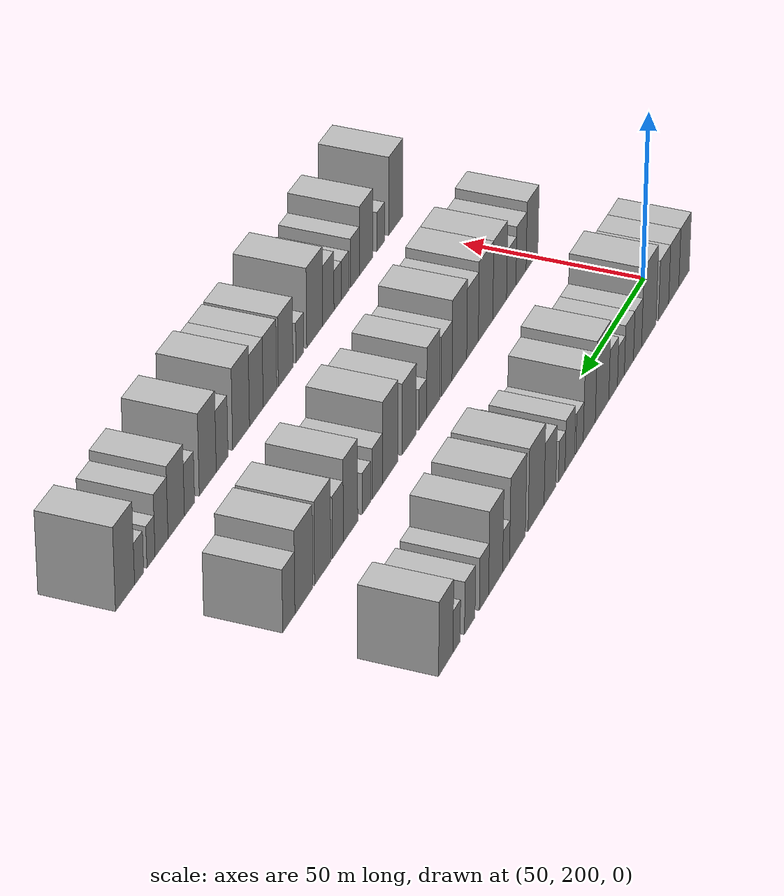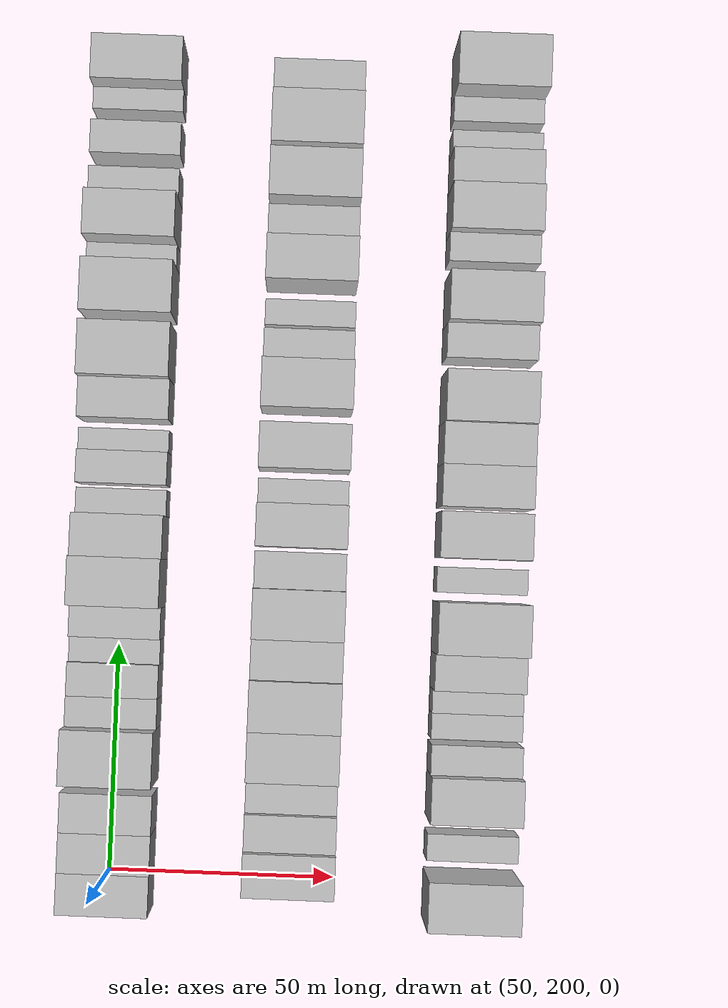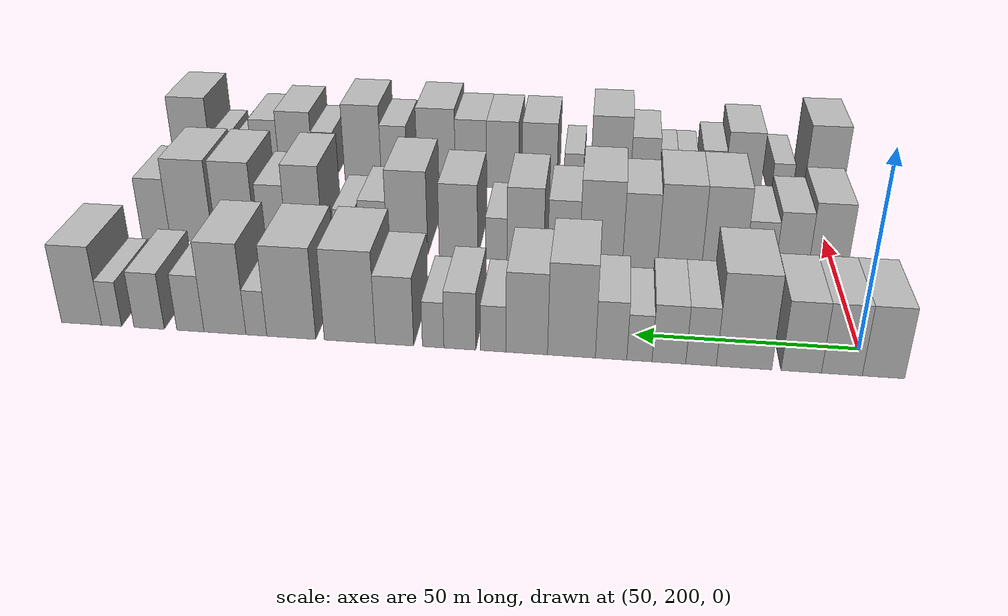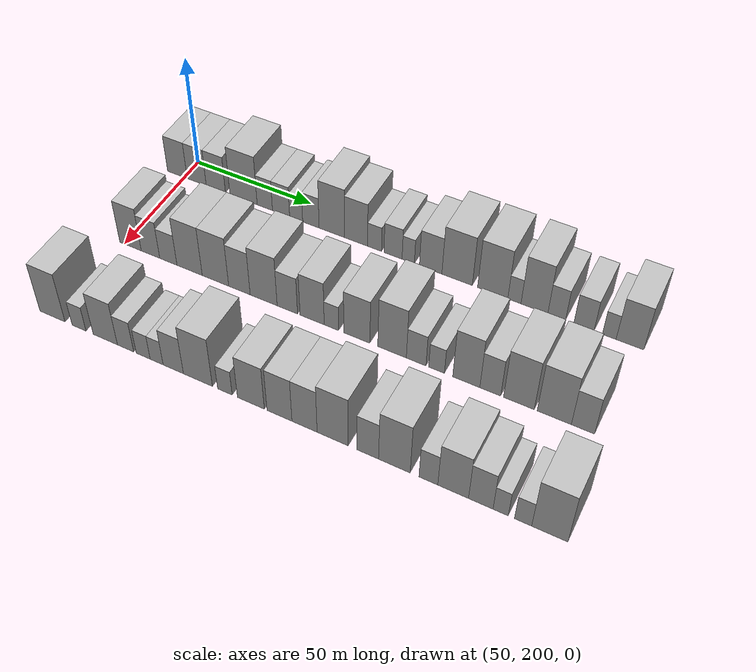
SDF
<sdf version="1.6">
 <world name="default">
  <model name="building_62">
   <static>1</static>
   <pose>50.0000 196.6651 0 0.000000 0.000000 0.000000</pose>
   <link name="link">
    <pose>0 0 9.00 0 0 0</pose>
    <collision name="collision"><geometry><box><size>20.0000 8.9473 18.0000</size></box></geometry></collision>
    <visual name="visual">
     <cast_shadows>0</cast_shadows>
     <geometry><box><size>20.0000 8.9473 18.0000</size></box></geometry>
     <material>
      <script>
       <uri>model://HANNAS_wall/materials/scripts</uri>
       <uri>model://HANNAS_wall/materials/textures</uri>
       <name>vrc/HANNAS_wall</name>
      </script>
     </material>
    </visual>
   </link>
  </model>
  <model name="building_63">
   <static>1</static>
   <pose>50.0000 205.4708 0 0.000000 0.000000 0.000000</pose>
   <link name="link">
    <pose>0 0 9.00 0 0 0</pose>
    <collision name="collision"><geometry><box><size>20.0000 8.6641 18.0000</size></box></geometry></collision>
    <visual name="visual">
     <cast_shadows>0</cast_shadows>
     <geometry><box><size>20.0000 8.6641 18.0000</size></box></geometry>
     <material>
      <script>
       <uri>model://HANNAS_wall/materials/scripts</uri>
       <uri>model://HANNAS_wall/materials/textures</uri>
       <name>vrc/HANNAS_wall</name>
      </script>
     </material>
    </visual>
   </link>
  </model>
  <model name="building_64">
   <static>1</static>
   <pose>50.0000 214.1086 0 0.000000 0.000000 0.000000</pose>
   <link name="link">
    <pose>0 0 9.00 0 0 0</pose>
    <collision name="collision"><geometry><box><size>20.0000 8.6115 18.0000</size></box></geometry></collision>
    <visual name="visual">
     <cast_shadows>0</cast_shadows>
     <geometry><box><size>20.0000 8.6115 18.0000</size></box></geometry>
     <material>
      <script>
       <uri>model://HANNAS_wall/materials/scripts</uri>
       <uri>model://HANNAS_wall/materials/textures</uri>
       <name>vrc/HANNAS_wall</name>
      </script>
     </material>
    </visual>
   </link>
  </model>
  <model name="building_65">
   <static>1</static>
   <pose>50.0000 226.4119 0 0.000000 0.000000 0.000000</pose>
   <link name="link">
    <pose>0 0 12.00 0 0 0</pose>
    <collision name="collision"><geometry><box><size>20.0000 11.9950 24.0000</size></box></geometry></collision>
    <visual name="visual">
     <cast_shadows>0</cast_shadows>
     <geometry><box><size>20.0000 11.9950 24.0000</size></box></geometry>
     <material>
      <script>
       <uri>model://HANNAS_wall/materials/scripts</uri>
       <uri>model://HANNAS_wall/materials/textures</uri>
       <name>vrc/HANNAS_wall</name>
      </script>
     </material>
    </visual>
   </link>
  </model>
  <model name="building_66">
   <static>1</static>
   <pose>50.0000 235.7333 0 0.000000 0.000000 0.000000</pose>
   <link name="link">
    <pose>0 0 7.50 0 0 0</pose>
    <collision name="collision"><geometry><box><size>20.0000 6.6477 15.0000</size></box></geometry></collision>
    <visual name="visual">
     <cast_shadows>0</cast_shadows>
     <geometry><box><size>20.0000 6.6477 15.0000</size></box></geometry>
     <material>
      <script>
       <uri>model://HANNAS_wall/materials/scripts</uri>
       <uri>model://HANNAS_wall/materials/textures</uri>
       <name>vrc/HANNAS_wall</name>
      </script>
     </material>
    </visual>
   </link>
  </model>
  <model name="building_67">
   <static>1</static>
   <pose>50.0000 242.7512 0 0.000000 0.000000 0.000000</pose>
   <link name="link">
    <pose>0 0 7.50 0 0 0</pose>
    <collision name="collision"><geometry><box><size>20.0000 7.3881 15.0000</size></box></geometry></collision>
    <visual name="visual">
     <cast_shadows>0</cast_shadows>
     <geometry><box><size>20.0000 7.3881 15.0000</size></box></geometry>
     <material>
      <script>
       <uri>model://HANNAS_wall/materials/scripts</uri>
       <uri>model://HANNAS_wall/materials/textures</uri>
       <name>vrc/HANNAS_wall</name>
      </script>
     </material>
    </visual>
   </link>
  </model>
  <model name="building_68">
   <static>1</static>
   <pose>50.0000 249.2153 0 0.000000 0.000000 0.000000</pose>
   <link name="link">
    <pose>0 0 6.00 0 0 0</pose>
    <collision name="collision"><geometry><box><size>20.0000 5.5402 12.0000</size></box></geometry></collision>
    <visual name="visual">
     <cast_shadows>0</cast_shadows>
     <geometry><box><size>20.0000 5.5402 12.0000</size></box></geometry>
     <material>
      <script>
       <uri>model://HANNAS_wall/materials/scripts</uri>
       <uri>model://HANNAS_wall/materials/textures</uri>
       <name>vrc/HANNAS_wall</name>
      </script>
     </material>
    </visual>
   </link>
  </model>
  <model name="building_69">
   <static>1</static>
   <pose>50.0000 255.4586 0 0.000000 0.000000 0.000000</pose>
   <link name="link">
    <pose>0 0 7.50 0 0 0</pose>
    <collision name="collision"><geometry><box><size>20.0000 6.9463 15.0000</size></box></geometry></collision>
    <visual name="visual">
     <cast_shadows>0</cast_shadows>
     <geometry><box><size>20.0000 6.9463 15.0000</size></box></geometry>
     <material>
      <script>
       <uri>model://HANNAS_wall/materials/scripts</uri>
       <uri>model://HANNAS_wall/materials/textures</uri>
       <name>vrc/HANNAS_wall</name>
      </script>
     </material>
    </visual>
   </link>
  </model>
  <model name="building_70">
   <static>1</static>
   <pose>50.0000 264.2578 0 0.000000 0.000000 0.000000</pose>
   <link name="link">
    <pose>0 0 12.00 0 0 0</pose>
    <collision name="collision"><geometry><box><size>20.0000 10.6522 24.0000</size></box></geometry></collision>
    <visual name="visual">
     <cast_shadows>0</cast_shadows>
     <geometry><box><size>20.0000 10.6522 24.0000</size></box></geometry>
     <material>
      <script>
       <uri>model://HANNAS_wall/materials/scripts</uri>
       <uri>model://HANNAS_wall/materials/textures</uri>
       <name>vrc/HANNAS_wall</name>
      </script>
     </material>
    </visual>
   </link>
  </model>
  <model name="building_71">
   <static>1</static>
   <pose>50.0000 274.2745 0 0.000000 0.000000 0.000000</pose>
   <link name="link">
    <pose>0 0 10.50 0 0 0</pose>
    <collision name="collision"><geometry><box><size>20.0000 9.3812 21.0000</size></box></geometry></collision>
    <visual name="visual">
     <cast_shadows>0</cast_shadows>
     <geometry><box><size>20.0000 9.3812 21.0000</size></box></geometry>
     <material>
      <script>
       <uri>model://HANNAS_wall/materials/scripts</uri>
       <uri>model://HANNAS_wall/materials/textures</uri>
       <name>vrc/HANNAS_wall</name>
      </script>
     </material>
    </visual>
   </link>
  </model>
  <model name="building_72">
   <static>1</static>
   <pose>50.0000 281.8355 0 0.000000 0.000000 0.000000</pose>
   <link name="link">
    <pose>0 0 6.00 0 0 0</pose>
    <collision name="collision"><geometry><box><size>20.0000 5.7407 12.0000</size></box></geometry></collision>
    <visual name="visual">
     <cast_shadows>0</cast_shadows>
     <geometry><box><size>20.0000 5.7407 12.0000</size></box></geometry>
     <material>
      <script>
       <uri>model://HANNAS_wall/materials/scripts</uri>
       <uri>model://HANNAS_wall/materials/textures</uri>
       <name>vrc/HANNAS_wall</name>
      </script>
     </material>
    </visual>
   </link>
  </model>
  <model name="building_73">
   <static>1</static>
   <pose>50.0000 289.3360 0 0.000000 0.000000 0.000000</pose>
   <link name="link">
    <pose>0 0 7.50 0 0 0</pose>
    <collision name="collision"><geometry><box><size>20.0000 7.2604 15.0000</size></box></geometry></collision>
    <visual name="visual">
     <cast_shadows>0</cast_shadows>
     <geometry><box><size>20.0000 7.2604 15.0000</size></box></geometry>
     <material>
      <script>
       <uri>model://HANNAS_wall/materials/scripts</uri>
       <uri>model://HANNAS_wall/materials/textures</uri>
       <name>vrc/HANNAS_wall</name>
      </script>
     </material>
    </visual>
   </link>
  </model>
  <model name="building_74">
   <static>1</static>
   <pose>50.0000 295.4205 0 0.000000 0.000000 0.000000</pose>
   <link name="link">
    <pose>0 0 6.00 0 0 0</pose>
    <collision name="collision"><geometry><box><size>20.0000 4.9085 12.0000</size></box></geometry></collision>
    <visual name="visual">
     <cast_shadows>0</cast_shadows>
     <geometry><box><size>20.0000 4.9085 12.0000</size></box></geometry>
     <material>
      <script>
       <uri>model://HANNAS_wall/materials/scripts</uri>
       <uri>model://HANNAS_wall/materials/textures</uri>
       <name>vrc/HANNAS_wall</name>
      </script>
     </material>
    </visual>
   </link>
  </model>
  <model name="building_75">
   <static>1</static>
   <pose>50.0000 304.2933 0 0.000000 0.000000 0.000000</pose>
   <link name="link">
    <pose>0 0 9.00 0 0 0</pose>
    <collision name="collision"><geometry><box><size>20.0000 8.8372 18.0000</size></box></geometry></collision>
    <visual name="visual">
     <cast_shadows>0</cast_shadows>
     <geometry><box><size>20.0000 8.8372 18.0000</size></box></geometry>
     <material>
      <script>
       <uri>model://HANNAS_wall/materials/scripts</uri>
       <uri>model://HANNAS_wall/materials/textures</uri>
       <name>vrc/HANNAS_wall</name>
      </script>
     </material>
    </visual>
   </link>
  </model>
  <model name="building_76">
   <static>1</static>
   <pose>50.0000 314.6192 0 0.000000 0.000000 0.000000</pose>
   <link name="link">
    <pose>0 0 12.00 0 0 0</pose>
    <collision name="collision"><geometry><box><size>20.0000 11.8146 24.0000</size></box></geometry></collision>
    <visual name="visual">
     <cast_shadows>0</cast_shadows>
     <geometry><box><size>20.0000 11.8146 24.0000</size></box></geometry>
     <material>
      <script>
       <uri>model://HANNAS_wall/materials/scripts</uri>
       <uri>model://HANNAS_wall/materials/textures</uri>
       <name>vrc/HANNAS_wall</name>
      </script>
     </material>
    </visual>
   </link>
  </model>
  <model name="building_77">
   <static>1</static>
   <pose>50.0000 328.2675 0 0.000000 0.000000 0.000000</pose>
   <link name="link">
    <pose>0 0 12.00 0 0 0</pose>
    <collision name="collision"><geometry><box><size>20.0000 11.4820 24.0000</size></box></geometry></collision>
    <visual name="visual">
     <cast_shadows>0</cast_shadows>
     <geometry><box><size>20.0000 11.4820 24.0000</size></box></geometry>
     <material>
      <script>
       <uri>model://HANNAS_wall/materials/scripts</uri>
       <uri>model://HANNAS_wall/materials/textures</uri>
       <name>vrc/HANNAS_wall</name>
      </script>
     </material>
    </visual>
   </link>
  </model>
  <model name="building_78">
   <static>1</static>
   <pose>50.0000 336.4763 0 0.000000 0.000000 0.000000</pose>
   <link name="link">
    <pose>0 0 6.00 0 0 0</pose>
    <collision name="collision"><geometry><box><size>20.0000 4.9357 12.0000</size></box></geometry></collision>
    <visual name="visual">
     <cast_shadows>0</cast_shadows>
     <geometry><box><size>20.0000 4.9357 12.0000</size></box></geometry>
     <material>
      <script>
       <uri>model://HANNAS_wall/materials/scripts</uri>
       <uri>model://HANNAS_wall/materials/textures</uri>
       <name>vrc/HANNAS_wall</name>
      </script>
     </material>
    </visual>
   </link>
  </model>
  <model name="building_79">
   <static>1</static>
   <pose>50.0000 343.9166 0 0.000000 0.000000 0.000000</pose>
   <link name="link">
    <pose>0 0 12.00 0 0 0</pose>
    <collision name="collision"><geometry><box><size>20.0000 9.9449 24.0000</size></box></geometry></collision>
    <visual name="visual">
     <cast_shadows>0</cast_shadows>
     <geometry><box><size>20.0000 9.9449 24.0000</size></box></geometry>
     <material>
      <script>
       <uri>model://HANNAS_wall/materials/scripts</uri>
       <uri>model://HANNAS_wall/materials/textures</uri>
       <name>vrc/HANNAS_wall</name>
      </script>
     </material>
    </visual>
   </link>
  </model>
  <model name="building_80">
   <static>1</static>
   <pose>50.0000 352.1392 0 0.000000 0.000000 0.000000</pose>
   <link name="link">
    <pose>0 0 7.50 0 0 0</pose>
    <collision name="collision"><geometry><box><size>20.0000 6.5004 15.0000</size></box></geometry></collision>
    <visual name="visual">
     <cast_shadows>0</cast_shadows>
     <geometry><box><size>20.0000 6.5004 15.0000</size></box></geometry>
     <material>
      <script>
       <uri>model://HANNAS_wall/materials/scripts</uri>
       <uri>model://HANNAS_wall/materials/textures</uri>
       <name>vrc/HANNAS_wall</name>
      </script>
     </material>
    </visual>
   </link>
  </model>
  <model name="building_81">
   <static>1</static>
   <pose>50.0000 362.0361 0 0.000000 0.000000 0.000000</pose>
   <link name="link">
    <pose>0 0 7.50 0 0 0</pose>
    <collision name="collision"><geometry><box><size>20.0000 7.2933 15.0000</size></box></geometry></collision>
    <visual name="visual">
     <cast_shadows>0</cast_shadows>
     <geometry><box><size>20.0000 7.2933 15.0000</size></box></geometry>
     <material>
      <script>
       <uri>model://HANNAS_wall/materials/scripts</uri>
       <uri>model://HANNAS_wall/materials/textures</uri>
       <name>vrc/HANNAS_wall</name>
      </script>
     </material>
    </visual>
   </link>
  </model>
  <model name="building_82">
   <static>1</static>
   <pose>50.0000 371.1086 0 0.000000 0.000000 0.000000</pose>
   <link name="link">
    <pose>0 0 6.00 0 0 0</pose>
    <collision name="collision"><geometry><box><size>20.0000 4.8518 12.0000</size></box></geometry></collision>
    <visual name="visual">
     <cast_shadows>0</cast_shadows>
     <geometry><box><size>20.0000 4.8518 12.0000</size></box></geometry>
     <material>
      <script>
       <uri>model://HANNAS_wall/materials/scripts</uri>
       <uri>model://HANNAS_wall/materials/textures</uri>
       <name>vrc/HANNAS_wall</name>
      </script>
     </material>
    </visual>
   </link>
  </model>
  <model name="building_83">
   <static>1</static>
   <pose>50.0000 378.4152 0 0.000000 0.000000 0.000000</pose>
   <link name="link">
    <pose>0 0 10.50 0 0 0</pose>
    <collision name="collision"><geometry><box><size>20.0000 9.7613 21.0000</size></box></geometry></collision>
    <visual name="visual">
     <cast_shadows>0</cast_shadows>
     <geometry><box><size>20.0000 9.7613 21.0000</size></box></geometry>
     <material>
      <script>
       <uri>model://HANNAS_wall/materials/scripts</uri>
       <uri>model://HANNAS_wall/materials/textures</uri>
       <name>vrc/HANNAS_wall</name>
      </script>
     </material>
    </visual>
   </link>
  </model>
  <model name="building_145">
   <static>1</static>
   <pose>90.0000 202.6018 0 0.000000 0.000000 0.000000</pose>
   <link name="link">
    <pose>0 0 10.50 0 0 0</pose>
    <collision name="collision"><geometry><box><size>20.0000 9.4312 21.0000</size></box></geometry></collision>
    <visual name="visual">
     <cast_shadows>0</cast_shadows>
     <geometry><box><size>20.0000 9.4312 21.0000</size></box></geometry>
     <material>
      <script>
       <uri>model://HANNAS_wall/materials/scripts</uri>
       <uri>model://HANNAS_wall/materials/textures</uri>
       <name>vrc/HANNAS_wall</name>
      </script>
     </material>
    </visual>
   </link>
  </model>
  <model name="building_146">
   <static>1</static>
   <pose>90.0000 211.3179 0 0.000000 0.000000 0.000000</pose>
   <link name="link">
    <pose>0 0 9.00 0 0 0</pose>
    <collision name="collision"><geometry><box><size>20.0000 8.0010 18.0000</size></box></geometry></collision>
    <visual name="visual">
     <cast_shadows>0</cast_shadows>
     <geometry><box><size>20.0000 8.0010 18.0000</size></box></geometry>
     <material>
      <script>
       <uri>model://HANNAS_wall/materials/scripts</uri>
       <uri>model://HANNAS_wall/materials/textures</uri>
       <name>vrc/HANNAS_wall</name>
      </script>
     </material>
    </visual>
   </link>
  </model>
  <model name="building_147">
   <static>1</static>
   <pose>90.0000 219.0181 0 0.000000 0.000000 0.000000</pose>
   <link name="link">
    <pose>0 0 7.50 0 0 0</pose>
    <collision name="collision"><geometry><box><size>20.0000 7.3994 15.0000</size></box></geometry></collision>
    <visual name="visual">
     <cast_shadows>0</cast_shadows>
     <geometry><box><size>20.0000 7.3994 15.0000</size></box></geometry>
     <material>
      <script>
       <uri>model://HANNAS_wall/materials/scripts</uri>
       <uri>model://HANNAS_wall/materials/textures</uri>
       <name>vrc/HANNAS_wall</name>
      </script>
     </material>
    </visual>
   </link>
  </model>
  <model name="building_148">
   <static>1</static>
   <pose>90.0000 228.0673 0 0.000000 0.000000 0.000000</pose>
   <link name="link">
    <pose>0 0 12.00 0 0 0</pose>
    <collision name="collision"><geometry><box><size>20.0000 10.6990 24.0000</size></box></geometry></collision>
    <visual name="visual">
     <cast_shadows>0</cast_shadows>
     <geometry><box><size>20.0000 10.6990 24.0000</size></box></geometry>
     <material>
      <script>
       <uri>model://HANNAS_wall/materials/scripts</uri>
       <uri>model://HANNAS_wall/materials/textures</uri>
       <name>vrc/HANNAS_wall</name>
      </script>
     </material>
    </visual>
   </link>
  </model>
  <model name="building_149">
   <static>1</static>
   <pose>90.0000 238.9220 0 0.000000 0.000000 0.000000</pose>
   <link name="link">
    <pose>0 0 12.00 0 0 0</pose>
    <collision name="collision"><geometry><box><size>20.0000 11.0103 24.0000</size></box></geometry></collision>
    <visual name="visual">
     <cast_shadows>0</cast_shadows>
     <geometry><box><size>20.0000 11.0103 24.0000</size></box></geometry>
     <material>
      <script>
       <uri>model://HANNAS_wall/materials/scripts</uri>
       <uri>model://HANNAS_wall/materials/textures</uri>
       <name>vrc/HANNAS_wall</name>
      </script>
     </material>
    </visual>
   </link>
  </model>
  <model name="building_150">
   <static>1</static>
   <pose>90.0000 248.8264 0 0.000000 0.000000 0.000000</pose>
   <link name="link">
    <pose>0 0 10.50 0 0 0</pose>
    <collision name="collision"><geometry><box><size>20.0000 8.7985 21.0000</size></box></geometry></collision>
    <visual name="visual">
     <cast_shadows>0</cast_shadows>
     <geometry><box><size>20.0000 8.7985 21.0000</size></box></geometry>
     <material>
      <script>
       <uri>model://HANNAS_wall/materials/scripts</uri>
       <uri>model://HANNAS_wall/materials/textures</uri>
       <name>vrc/HANNAS_wall</name>
      </script>
     </material>
    </visual>
   </link>
  </model>
  <model name="building_151">
   <static>1</static>
   <pose>90.0000 258.6793 0 0.000000 0.000000 0.000000</pose>
   <link name="link">
    <pose>0 0 12.00 0 0 0</pose>
    <collision name="collision"><geometry><box><size>20.0000 10.9075 24.0000</size></box></geometry></collision>
    <visual name="visual">
     <cast_shadows>0</cast_shadows>
     <geometry><box><size>20.0000 10.9075 24.0000</size></box></geometry>
     <material>
      <script>
       <uri>model://HANNAS_wall/materials/scripts</uri>
       <uri>model://HANNAS_wall/materials/textures</uri>
       <name>vrc/HANNAS_wall</name>
      </script>
     </material>
    </visual>
   </link>
  </model>
  <model name="building_152">
   <static>1</static>
   <pose>90.0000 268.1873 0 0.000000 0.000000 0.000000</pose>
   <link name="link">
    <pose>0 0 9.00 0 0 0</pose>
    <collision name="collision"><geometry><box><size>20.0000 8.1083 18.0000</size></box></geometry></collision>
    <visual name="visual">
     <cast_shadows>0</cast_shadows>
     <geometry><box><size>20.0000 8.1083 18.0000</size></box></geometry>
     <material>
      <script>
       <uri>model://HANNAS_wall/materials/scripts</uri>
       <uri>model://HANNAS_wall/materials/textures</uri>
       <name>vrc/HANNAS_wall</name>
      </script>
     </material>
    </visual>
   </link>
  </model>
  <model name="building_153">
   <static>1</static>
   <pose>90.0000 277.9741 0 0.000000 0.000000 0.000000</pose>
   <link name="link">
    <pose>0 0 10.50 0 0 0</pose>
    <collision name="collision"><geometry><box><size>20.0000 9.4654 21.0000</size></box></geometry></collision>
    <visual name="visual">
     <cast_shadows>0</cast_shadows>
     <geometry><box><size>20.0000 9.4654 21.0000</size></box></geometry>
     <material>
      <script>
       <uri>model://HANNAS_wall/materials/scripts</uri>
       <uri>model://HANNAS_wall/materials/textures</uri>
       <name>vrc/HANNAS_wall</name>
      </script>
     </material>
    </visual>
   </link>
  </model>
  <model name="building_154">
   <static>1</static>
   <pose>90.0000 285.4874 0 0.000000 0.000000 0.000000</pose>
   <link name="link">
    <pose>0 0 6.00 0 0 0</pose>
    <collision name="collision"><geometry><box><size>20.0000 5.5613 12.0000</size></box></geometry></collision>
    <visual name="visual">
     <cast_shadows>0</cast_shadows>
     <geometry><box><size>20.0000 5.5613 12.0000</size></box></geometry>
     <material>
      <script>
       <uri>model://HANNAS_wall/materials/scripts</uri>
       <uri>model://HANNAS_wall/materials/textures</uri>
       <name>vrc/HANNAS_wall</name>
      </script>
     </material>
    </visual>
   </link>
  </model>
  <model name="building_155">
   <static>1</static>
   <pose>90.0000 295.2616 0 0.000000 0.000000 0.000000</pose>
   <link name="link">
    <pose>0 0 10.50 0 0 0</pose>
    <collision name="collision"><geometry><box><size>20.0000 9.9870 21.0000</size></box></geometry></collision>
    <visual name="visual">
     <cast_shadows>0</cast_shadows>
     <geometry><box><size>20.0000 9.9870 21.0000</size></box></geometry>
     <material>
      <script>
       <uri>model://HANNAS_wall/materials/scripts</uri>
       <uri>model://HANNAS_wall/materials/textures</uri>
       <name>vrc/HANNAS_wall</name>
      </script>
     </material>
    </visual>
   </link>
  </model>
  <model name="building_156">
   <static>1</static>
   <pose>90.0000 308.5916 0 0.000000 0.000000 0.000000</pose>
   <link name="link">
    <pose>0 0 12.00 0 0 0</pose>
    <collision name="collision"><geometry><box><size>20.0000 10.6731 24.0000</size></box></geometry></collision>
    <visual name="visual">
     <cast_shadows>0</cast_shadows>
     <geometry><box><size>20.0000 10.6731 24.0000</size></box></geometry>
     <material>
      <script>
       <uri>model://HANNAS_wall/materials/scripts</uri>
       <uri>model://HANNAS_wall/materials/textures</uri>
       <name>vrc/HANNAS_wall</name>
      </script>
     </material>
    </visual>
   </link>
  </model>
  <model name="building_157">
   <static>1</static>
   <pose>90.0000 317.5486 0 0.000000 0.000000 0.000000</pose>
   <link name="link">
    <pose>0 0 7.50 0 0 0</pose>
    <collision name="collision"><geometry><box><size>20.0000 7.2409 15.0000</size></box></geometry></collision>
    <visual name="visual">
     <cast_shadows>0</cast_shadows>
     <geometry><box><size>20.0000 7.2409 15.0000</size></box></geometry>
     <material>
      <script>
       <uri>model://HANNAS_wall/materials/scripts</uri>
       <uri>model://HANNAS_wall/materials/textures</uri>
       <name>vrc/HANNAS_wall</name>
      </script>
     </material>
    </visual>
   </link>
  </model>
  <model name="building_158">
   <static>1</static>
   <pose>90.0000 325.0312 0 0.000000 0.000000 0.000000</pose>
   <link name="link">
    <pose>0 0 6.00 0 0 0</pose>
    <collision name="collision"><geometry><box><size>20.0000 5.7243 12.0000</size></box></geometry></collision>
    <visual name="visual">
     <cast_shadows>0</cast_shadows>
     <geometry><box><size>20.0000 5.7243 12.0000</size></box></geometry>
     <material>
      <script>
       <uri>model://HANNAS_wall/materials/scripts</uri>
       <uri>model://HANNAS_wall/materials/textures</uri>
       <name>vrc/HANNAS_wall</name>
      </script>
     </material>
    </visual>
   </link>
  </model>
  <model name="building_159">
   <static>1</static>
   <pose>90.0000 335.7489 0 0.000000 0.000000 0.000000</pose>
   <link name="link">
    <pose>0 0 12.00 0 0 0</pose>
    <collision name="collision"><geometry><box><size>20.0000 9.7111 24.0000</size></box></geometry></collision>
    <visual name="visual">
     <cast_shadows>0</cast_shadows>
     <geometry><box><size>20.0000 9.7111 24.0000</size></box></geometry>
     <material>
      <script>
       <uri>model://HANNAS_wall/materials/scripts</uri>
       <uri>model://HANNAS_wall/materials/textures</uri>
       <name>vrc/HANNAS_wall</name>
      </script>
     </material>
    </visual>
   </link>
  </model>
  <model name="building_160">
   <static>1</static>
   <pose>90.0000 344.2893 0 0.000000 0.000000 0.000000</pose>
   <link name="link">
    <pose>0 0 9.00 0 0 0</pose>
    <collision name="collision"><geometry><box><size>20.0000 7.3697 18.0000</size></box></geometry></collision>
    <visual name="visual">
     <cast_shadows>0</cast_shadows>
     <geometry><box><size>20.0000 7.3697 18.0000</size></box></geometry>
     <material>
      <script>
       <uri>model://HANNAS_wall/materials/scripts</uri>
       <uri>model://HANNAS_wall/materials/textures</uri>
       <name>vrc/HANNAS_wall</name>
      </script>
     </material>
    </visual>
   </link>
  </model>
  <model name="building_161">
   <static>1</static>
   <pose>90.0000 354.3084 0 0.000000 0.000000 0.000000</pose>
   <link name="link">
    <pose>0 0 12.00 0 0 0</pose>
    <collision name="collision"><geometry><box><size>20.0000 10.6686 24.0000</size></box></geometry></collision>
    <visual name="visual">
     <cast_shadows>0</cast_shadows>
     <geometry><box><size>20.0000 10.6686 24.0000</size></box></geometry>
     <material>
      <script>
       <uri>model://HANNAS_wall/materials/scripts</uri>
       <uri>model://HANNAS_wall/materials/textures</uri>
       <name>vrc/HANNAS_wall</name>
      </script>
     </material>
    </visual>
   </link>
  </model>
  <model name="building_162">
   <static>1</static>
   <pose>90.0000 366.4593 0 0.000000 0.000000 0.000000</pose>
   <link name="link">
    <pose>0 0 12.00 0 0 0</pose>
    <collision name="collision"><geometry><box><size>20.0000 11.6332 24.0000</size></box></geometry></collision>
    <visual name="visual">
     <cast_shadows>0</cast_shadows>
     <geometry><box><size>20.0000 11.6332 24.0000</size></box></geometry>
     <material>
      <script>
       <uri>model://HANNAS_wall/materials/scripts</uri>
       <uri>model://HANNAS_wall/materials/textures</uri>
       <name>vrc/HANNAS_wall</name>
      </script>
     </material>
    </visual>
   </link>
  </model>
  <model name="building_163">
   <static>1</static>
   <pose>90.0000 376.1790 0 0.000000 0.000000 0.000000</pose>
   <link name="link">
    <pose>0 0 9.00 0 0 0</pose>
    <collision name="collision"><geometry><box><size>20.0000 7.8061 18.0000</size></box></geometry></collision>
    <visual name="visual">
     <cast_shadows>0</cast_shadows>
     <geometry><box><size>20.0000 7.8061 18.0000</size></box></geometry>
     <material>
      <script>
       <uri>model://HANNAS_wall/materials/scripts</uri>
       <uri>model://HANNAS_wall/materials/textures</uri>
       <name>vrc/HANNAS_wall</name>
      </script>
     </material>
    </visual>
   </link>
  </model>
  <model name="building_228">
   <static>1</static>
   <pose>130.0000 197.8472 0 0.000000 0.000000 0.000000</pose>
   <link name="link">
    <pose>0 0 12.00 0 0 0</pose>
    <collision name="collision"><geometry><box><size>20.0000 10.7073 24.0000</size></box></geometry></collision>
    <visual name="visual">
     <cast_shadows>0</cast_shadows>
     <geometry><box><size>20.0000 10.7073 24.0000</size></box></geometry>
     <material>
      <script>
       <uri>model://HANNAS_wall/materials/scripts</uri>
       <uri>model://HANNAS_wall/materials/textures</uri>
       <name>vrc/HANNAS_wall</name>
      </script>
     </material>
    </visual>
   </link>
  </model>
  <model name="building_229">
   <static>1</static>
   <pose>130.0000 209.1103 0 0.000000 0.000000 0.000000</pose>
   <link name="link">
    <pose>0 0 6.00 0 0 0</pose>
    <collision name="collision"><geometry><box><size>20.0000 5.8190 12.0000</size></box></geometry></collision>
    <visual name="visual">
     <cast_shadows>0</cast_shadows>
     <geometry><box><size>20.0000 5.8190 12.0000</size></box></geometry>
     <material>
      <script>
       <uri>model://HANNAS_wall/materials/scripts</uri>
       <uri>model://HANNAS_wall/materials/textures</uri>
       <name>vrc/HANNAS_wall</name>
      </script>
     </material>
    </visual>
   </link>
  </model>
  <model name="building_230">
   <static>1</static>
   <pose>130.0000 220.0280 0 0.000000 0.000000 0.000000</pose>
   <link name="link">
    <pose>0 0 10.50 0 0 0</pose>
    <collision name="collision"><geometry><box><size>20.0000 10.0163 21.0000</size></box></geometry></collision>
    <visual name="visual">
     <cast_shadows>0</cast_shadows>
     <geometry><box><size>20.0000 10.0163 21.0000</size></box></geometry>
     <material>
      <script>
       <uri>model://HANNAS_wall/materials/scripts</uri>
       <uri>model://HANNAS_wall/materials/textures</uri>
       <name>vrc/HANNAS_wall</name>
      </script>
     </material>
    </visual>
   </link>
  </model>
  <model name="building_231">
   <static>1</static>
   <pose>130.0000 228.3581 0 0.000000 0.000000 0.000000</pose>
   <link name="link">
    <pose>0 0 7.50 0 0 0</pose>
    <collision name="collision"><geometry><box><size>20.0000 6.6440 15.0000</size></box></geometry></collision>
    <visual name="visual">
     <cast_shadows>0</cast_shadows>
     <geometry><box><size>20.0000 6.6440 15.0000</size></box></geometry>
     <material>
      <script>
       <uri>model://HANNAS_wall/materials/scripts</uri>
       <uri>model://HANNAS_wall/materials/textures</uri>
       <name>vrc/HANNAS_wall</name>
      </script>
     </material>
    </visual>
   </link>
  </model>
  <model name="building_232">
   <static>1</static>
   <pose>130.0000 235.4862 0 0.000000 0.000000 0.000000</pose>
   <link name="link">
    <pose>0 0 6.00 0 0 0</pose>
    <collision name="collision"><geometry><box><size>20.0000 5.6122 12.0000</size></box></geometry></collision>
    <visual name="visual">
     <cast_shadows>0</cast_shadows>
     <geometry><box><size>20.0000 5.6122 12.0000</size></box></geometry>
     <material>
      <script>
       <uri>model://HANNAS_wall/materials/scripts</uri>
       <uri>model://HANNAS_wall/materials/textures</uri>
       <name>vrc/HANNAS_wall</name>
      </script>
     </material>
    </visual>
   </link>
  </model>
  <model name="building_233">
   <static>1</static>
   <pose>130.0000 240.8724 0 0.000000 0.000000 0.000000</pose>
   <link name="link">
    <pose>0 0 6.00 0 0 0</pose>
    <collision name="collision"><geometry><box><size>20.0000 5.1601 12.0000</size></box></geometry></collision>
    <visual name="visual">
     <cast_shadows>0</cast_shadows>
     <geometry><box><size>20.0000 5.1601 12.0000</size></box></geometry>
     <material>
      <script>
       <uri>model://HANNAS_wall/materials/scripts</uri>
       <uri>model://HANNAS_wall/materials/textures</uri>
       <name>vrc/HANNAS_wall</name>
      </script>
     </material>
    </visual>
   </link>
  </model>
  <model name="building_234">
   <static>1</static>
   <pose>130.0000 247.4672 0 0.000000 0.000000 0.000000</pose>
   <link name="link">
    <pose>0 0 9.00 0 0 0</pose>
    <collision name="collision"><geometry><box><size>20.0000 8.0295 18.0000</size></box></geometry></collision>
    <visual name="visual">
     <cast_shadows>0</cast_shadows>
     <geometry><box><size>20.0000 8.0295 18.0000</size></box></geometry>
     <material>
      <script>
       <uri>model://HANNAS_wall/materials/scripts</uri>
       <uri>model://HANNAS_wall/materials/textures</uri>
       <name>vrc/HANNAS_wall</name>
      </script>
     </material>
    </visual>
   </link>
  </model>
  <model name="building_235">
   <static>1</static>
   <pose>130.0000 257.1184 0 0.000000 0.000000 0.000000</pose>
   <link name="link">
    <pose>0 0 12.00 0 0 0</pose>
    <collision name="collision"><geometry><box><size>20.0000 11.2730 24.0000</size></box></geometry></collision>
    <visual name="visual">
     <cast_shadows>0</cast_shadows>
     <geometry><box><size>20.0000 11.2730 24.0000</size></box></geometry>
     <material>
      <script>
       <uri>model://HANNAS_wall/materials/scripts</uri>
       <uri>model://HANNAS_wall/materials/textures</uri>
       <name>vrc/HANNAS_wall</name>
      </script>
     </material>
    </visual>
   </link>
  </model>
  <model name="building_236">
   <static>1</static>
   <pose>130.0000 267.5373 0 0.000000 0.000000 0.000000</pose>
   <link name="link">
    <pose>0 0 6.00 0 0 0</pose>
    <collision name="collision"><geometry><box><size>20.0000 5.5647 12.0000</size></box></geometry></collision>
    <visual name="visual">
     <cast_shadows>0</cast_shadows>
     <geometry><box><size>20.0000 5.5647 12.0000</size></box></geometry>
     <material>
      <script>
       <uri>model://HANNAS_wall/materials/scripts</uri>
       <uri>model://HANNAS_wall/materials/textures</uri>
       <name>vrc/HANNAS_wall</name>
      </script>
     </material>
    </visual>
   </link>
  </model>
  <model name="building_237">
   <static>1</static>
   <pose>130.0000 277.3658 0 0.000000 0.000000 0.000000</pose>
   <link name="link">
    <pose>0 0 10.50 0 0 0</pose>
    <collision name="collision"><geometry><box><size>20.0000 10.0923 21.0000</size></box></geometry></collision>
    <visual name="visual">
     <cast_shadows>0</cast_shadows>
     <geometry><box><size>20.0000 10.0923 21.0000</size></box></geometry>
     <material>
      <script>
       <uri>model://HANNAS_wall/materials/scripts</uri>
       <uri>model://HANNAS_wall/materials/textures</uri>
       <name>vrc/HANNAS_wall</name>
      </script>
     </material>
    </visual>
   </link>
  </model>
  <model name="building_238">
   <static>1</static>
   <pose>130.0000 288.0224 0 0.000000 0.000000 0.000000</pose>
   <link name="link">
    <pose>0 0 10.50 0 0 0</pose>
    <collision name="collision"><geometry><box><size>20.0000 9.2210 21.0000</size></box></geometry></collision>
    <visual name="visual">
     <cast_shadows>0</cast_shadows>
     <geometry><box><size>20.0000 9.2210 21.0000</size></box></geometry>
     <material>
      <script>
       <uri>model://HANNAS_wall/materials/scripts</uri>
       <uri>model://HANNAS_wall/materials/textures</uri>
       <name>vrc/HANNAS_wall</name>
      </script>
     </material>
    </visual>
   </link>
  </model>
  <model name="building_239">
   <static>1</static>
   <pose>130.0000 297.2086 0 0.000000 0.000000 0.000000</pose>
   <link name="link">
    <pose>0 0 10.50 0 0 0</pose>
    <collision name="collision"><geometry><box><size>20.0000 9.1515 21.0000</size></box></geometry></collision>
    <visual name="visual">
     <cast_shadows>0</cast_shadows>
     <geometry><box><size>20.0000 9.1515 21.0000</size></box></geometry>
     <material>
      <script>
       <uri>model://HANNAS_wall/materials/scripts</uri>
       <uri>model://HANNAS_wall/materials/textures</uri>
       <name>vrc/HANNAS_wall</name>
      </script>
     </material>
    </visual>
   </link>
  </model>
  <model name="building_240">
   <static>1</static>
   <pose>130.0000 307.3562 0 0.000000 0.000000 0.000000</pose>
   <link name="link">
    <pose>0 0 12.00 0 0 0</pose>
    <collision name="collision"><geometry><box><size>20.0000 11.1436 24.0000</size></box></geometry></collision>
    <visual name="visual">
     <cast_shadows>0</cast_shadows>
     <geometry><box><size>20.0000 11.1436 24.0000</size></box></geometry>
     <material>
      <script>
       <uri>model://HANNAS_wall/materials/scripts</uri>
       <uri>model://HANNAS_wall/materials/textures</uri>
       <name>vrc/HANNAS_wall</name>
      </script>
     </material>
    </visual>
   </link>
  </model>
  <model name="building_241">
   <static>1</static>
   <pose>130.0000 319.7520 0 0.000000 0.000000 0.000000</pose>
   <link name="link">
    <pose>0 0 9.00 0 0 0</pose>
    <collision name="collision"><geometry><box><size>20.0000 7.6482 18.0000</size></box></geometry></collision>
    <visual name="visual">
     <cast_shadows>0</cast_shadows>
     <geometry><box><size>20.0000 7.6482 18.0000</size></box></geometry>
     <material>
      <script>
       <uri>model://HANNAS_wall/materials/scripts</uri>
       <uri>model://HANNAS_wall/materials/textures</uri>
       <name>vrc/HANNAS_wall</name>
      </script>
     </material>
    </visual>
   </link>
  </model>
  <model name="building_242">
   <static>1</static>
   <pose>130.0000 329.0286 0 0.000000 0.000000 0.000000</pose>
   <link name="link">
    <pose>0 0 12.00 0 0 0</pose>
    <collision name="collision"><geometry><box><size>20.0000 10.9050 24.0000</size></box></geometry></collision>
    <visual name="visual">
     <cast_shadows>0</cast_shadows>
     <geometry><box><size>20.0000 10.9050 24.0000</size></box></geometry>
     <material>
      <script>
       <uri>model://HANNAS_wall/materials/scripts</uri>
       <uri>model://HANNAS_wall/materials/textures</uri>
       <name>vrc/HANNAS_wall</name>
      </script>
     </material>
    </visual>
   </link>
  </model>
  <model name="building_243">
   <static>1</static>
   <pose>130.0000 340.6648 0 0.000000 0.000000 0.000000</pose>
   <link name="link">
    <pose>0 0 7.50 0 0 0</pose>
    <collision name="collision"><geometry><box><size>20.0000 6.3673 15.0000</size></box></geometry></collision>
    <visual name="visual">
     <cast_shadows>0</cast_shadows>
     <geometry><box><size>20.0000 6.3673 15.0000</size></box></geometry>
     <material>
      <script>
       <uri>model://HANNAS_wall/materials/scripts</uri>
       <uri>model://HANNAS_wall/materials/textures</uri>
       <name>vrc/HANNAS_wall</name>
      </script>
     </material>
    </visual>
   </link>
  </model>
  <model name="building_244">
   <static>1</static>
   <pose>130.0000 348.9657 0 0.000000 0.000000 0.000000</pose>
   <link name="link">
    <pose>0 0 10.50 0 0 0</pose>
    <collision name="collision"><geometry><box><size>20.0000 10.2343 21.0000</size></box></geometry></collision>
    <visual name="visual">
     <cast_shadows>0</cast_shadows>
     <geometry><box><size>20.0000 10.2343 21.0000</size></box></geometry>
     <material>
      <script>
       <uri>model://HANNAS_wall/materials/scripts</uri>
       <uri>model://HANNAS_wall/materials/textures</uri>
       <name>vrc/HANNAS_wall</name>
      </script>
     </material>
    </visual>
   </link>
  </model>
  <model name="building_245">
   <static>1</static>
   <pose>130.0000 358.0982 0 0.000000 0.000000 0.000000</pose>
   <link name="link">
    <pose>0 0 9.00 0 0 0</pose>
    <collision name="collision"><geometry><box><size>20.0000 8.0308 18.0000</size></box></geometry></collision>
    <visual name="visual">
     <cast_shadows>0</cast_shadows>
     <geometry><box><size>20.0000 8.0308 18.0000</size></box></geometry>
     <material>
      <script>
       <uri>model://HANNAS_wall/materials/scripts</uri>
       <uri>model://HANNAS_wall/materials/textures</uri>
       <name>vrc/HANNAS_wall</name>
      </script>
     </material>
    </visual>
   </link>
  </model>
  <model name="building_246">
   <static>1</static>
   <pose>130.0000 364.5877 0 0.000000 0.000000 0.000000</pose>
   <link name="link">
    <pose>0 0 6.00 0 0 0</pose>
    <collision name="collision"><geometry><box><size>20.0000 4.9481 12.0000</size></box></geometry></collision>
    <visual name="visual">
     <cast_shadows>0</cast_shadows>
     <geometry><box><size>20.0000 4.9481 12.0000</size></box></geometry>
     <material>
      <script>
       <uri>model://HANNAS_wall/materials/scripts</uri>
       <uri>model://HANNAS_wall/materials/textures</uri>
       <name>vrc/HANNAS_wall</name>
      </script>
     </material>
    </visual>
   </link>
  </model>
  <model name="building_247">
   <static>1</static>
   <pose>130.0000 371.8137 0 0.000000 0.000000 0.000000</pose>
   <link name="link">
    <pose>0 0 6.00 0 0 0</pose>
    <collision name="collision"><geometry><box><size>20.0000 5.5039 12.0000</size></box></geometry></collision>
    <visual name="visual">
     <cast_shadows>0</cast_shadows>
     <geometry><box><size>20.0000 5.5039 12.0000</size></box></geometry>
     <material>
      <script>
       <uri>model://HANNAS_wall/materials/scripts</uri>
       <uri>model://HANNAS_wall/materials/textures</uri>
       <name>vrc/HANNAS_wall</name>
      </script>
     </material>
    </visual>
   </link>
  </model>
  <model name="building_248">
   <static>1</static>
   <pose>130.0000 380.2874 0 0.000000 0.000000 0.000000</pose>
   <link name="link">
    <pose>0 0 12.00 0 0 0</pose>
    <collision name="collision"><geometry><box><size>20.0000 11.4435 24.0000</size></box></geometry></collision>
    <visual name="visual">
     <cast_shadows>0</cast_shadows>
     <geometry><box><size>20.0000 11.4435 24.0000</size></box></geometry>
     <material>
      <script>
       <uri>model://HANNAS_wall/materials/scripts</uri>
       <uri>model://HANNAS_wall/materials/textures</uri>
       <name>vrc/HANNAS_wall</name>
      </script>
     </material>
    </visual>
   </link>
  </model>
 </world>
</sdf>
